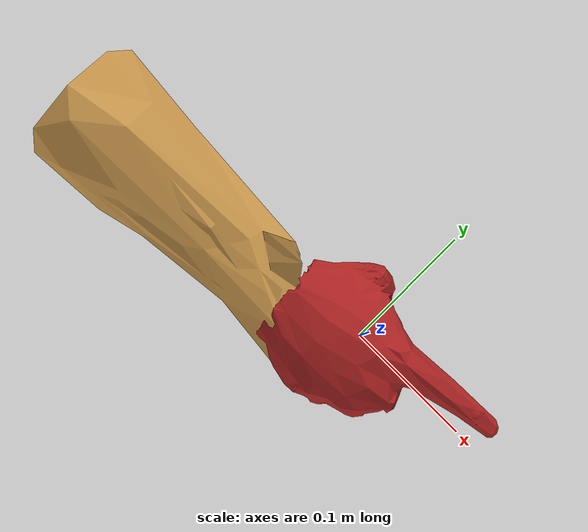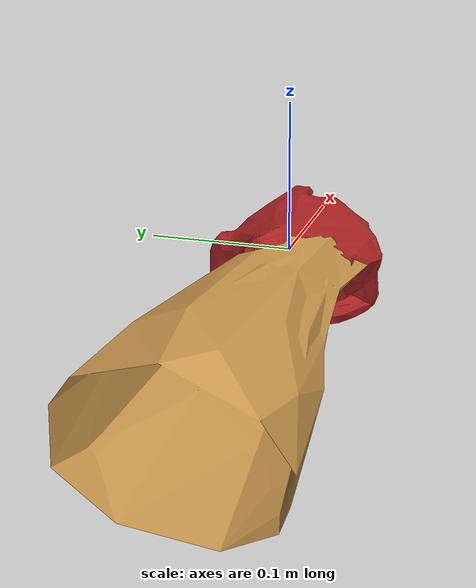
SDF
<?xml version="1.0" ?>
<sdf version="1.5">
  <model name="boxNew">
    <static>true</static>
    <link name="link">
      <gravity>0</gravity>
      <pose>-0.15 -0.07 0 0 0 3.1</pose>
      <inertial>
        <mass>0.390</mass>
        <inertia>
          <ixx>0.00058</ixx>
          <ixy>0</ixy>
          <ixz>0</ixz>
          <iyy>0.00058</iyy>
          <iyz>0</iyz>
          <izz>0.00019</izz>
        </inertia>
      </inertial>
      <collision name="collision">
        <geometry>
            <mesh>
              <uri>/home/stefan/catkin_ws/src/dms_moveit/ur3_moveit/obstacles/hand_right/hand_right_low.stl</uri>
              <scale>0.001 0.001 0.001</scale>
          </mesh>
        </geometry>
        <surface>
            <contact>
              <ode>
                <max_vel>0.0001</max_vel>
                <min_depth>0.001</min_depth>
              </ode>
            </contact>
          </surface>
      </collision>
      <visual name="visual_hand">
        <geometry>
          <mesh>
            <uri>/home/stefan/catkin_ws/src/dms_moveit/ur3_moveit/obstacles/hand_right/hand_right_glove.stl</uri>
            <scale>0.001 0.001 0.001</scale>
          </mesh>
        </geometry>
        <material>
        <!-- colors can be float (0..1) or int (0..255) -->
        <!-- color of each object is set by MULTIPLE color-behaviour-components, but its possible to use only one of them -->
          <ambient>175 35 35 255</ambient>
          <diffuse>175 35 35 255</diffuse>
          <specular>175 35 35 255</specular>
          <emissive>175 35 35 255</emissive>
        </material>
      </visual>
      <visual name="visual_forearm">
        <geometry>
          <mesh>
            <uri>/home/stefan/catkin_ws/src/dms_moveit/ur3_moveit/obstacles/hand_right/forearm_right.stl</uri>
            <scale>0.001 0.001 0.001</scale>
          </mesh>
        </geometry>
        <material>
          <diffuse>0.8 0.6 0.3 1.0</diffuse>
        </material>
      </visual>
    </link>
  </model>
</sdf>
